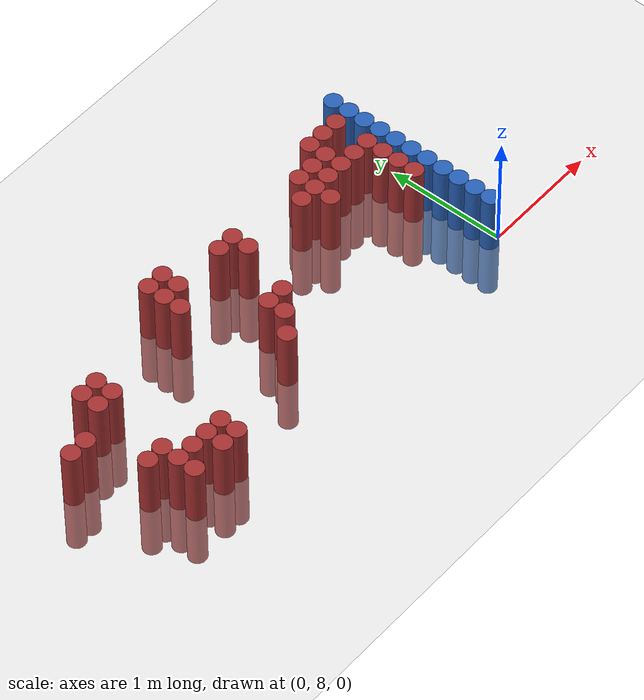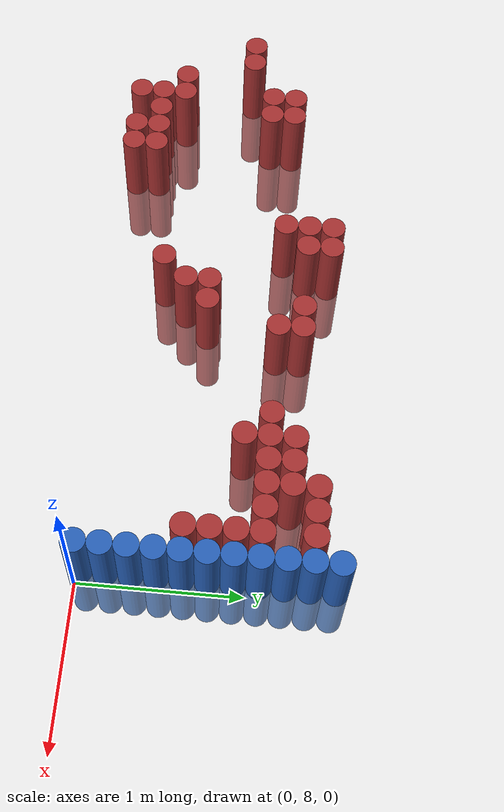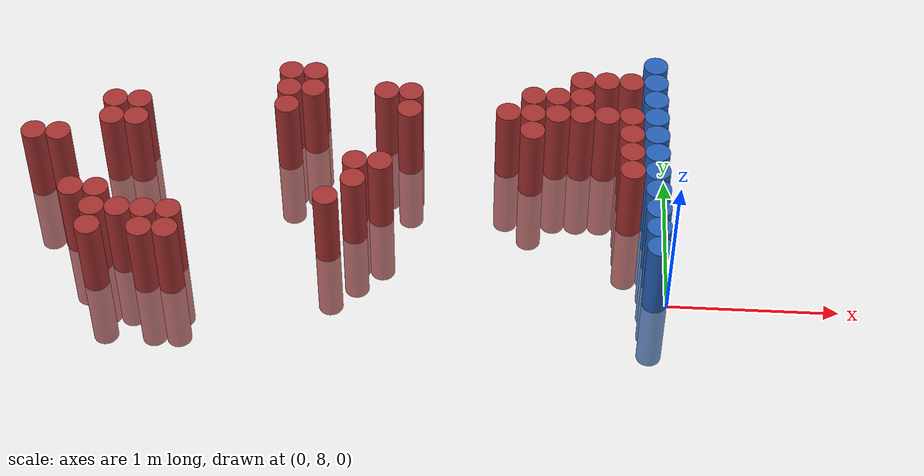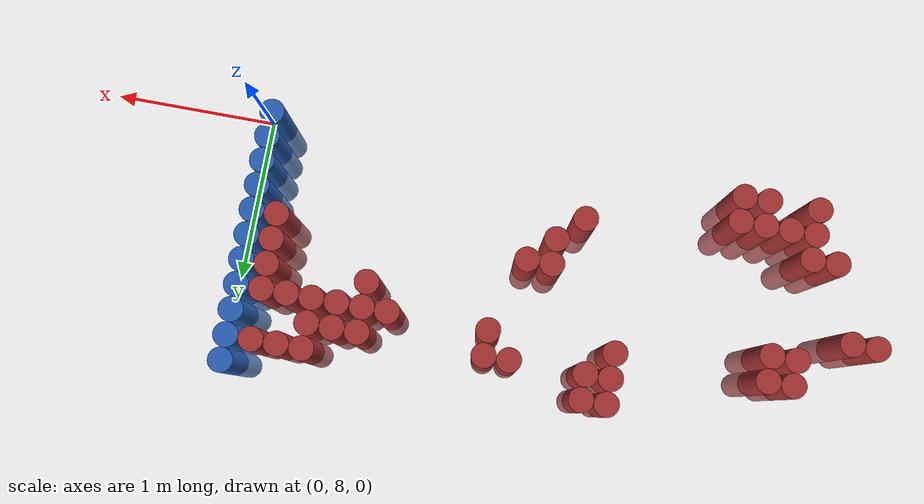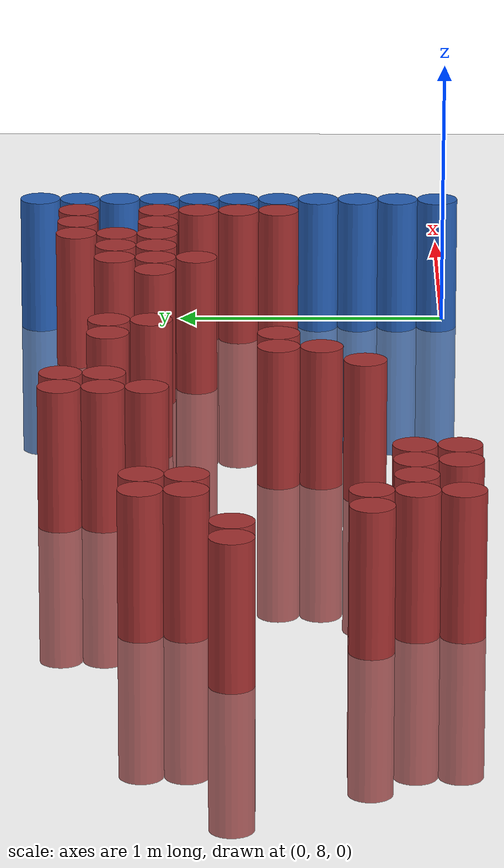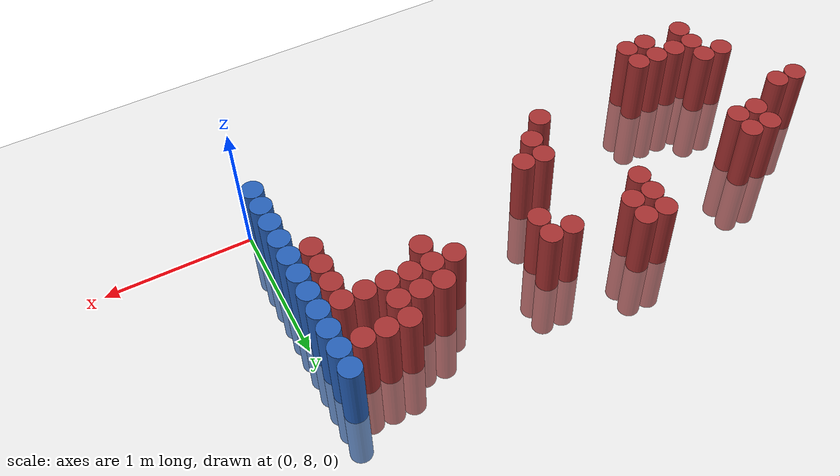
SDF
<sdf version="1.6">
 <world name="default">
  <model name="ground_plane">
   <static>1</static>
   <link name="link">
    <collision name="collision">
     <geometry><plane><normal>0 0 1</normal><size>100 100</size></plane></geometry>
     <surface><friction><ode><mu>100</mu><mu2>50</mu2></ode></friction></surface>
    </collision>
    <visual name="visual">
     <cast_shadows>0</cast_shadows>
     <geometry><plane><normal>0 0 1</normal><size>100 100</size></plane></geometry>
     <material>
      <script><uri>file://media/materials/scripts/gazebo.material</uri><name>Gazebo/Grey</name></script>
     </material>
    </visual>
   </link>
  </model>
  <model name="unit_cylinder_155">
   <static>1</static>
   <pose>-3.825000 8.775000 0.000000 0.000000 0.000000 0.000000</pose>
   <link name="link">
    <inertial>
     <mass>1</mass>
     <inertia><ixx>0.145833</ixx><ixy>0</ixy><ixz>0</ixz><iyy>0.145833</iyy><iyz>0</iyz><izz>0.125</izz></inertia>
    </inertial>
    <collision name="collision">
     <geometry><cylinder><radius>0.075000</radius><length>1</length></cylinder></geometry>
    </collision>
    <visual name="visual">
     <geometry><cylinder><radius>0.075000</radius><length>1</length></cylinder></geometry>
     <material>
      <ambient>0.648000 0.192000 0.192000 1</ambient>
      <diffuse>0.648000 0.192000 0.192000 1</diffuse>
     </material>
     <material>
      <script><name>Gazebo/Grey</name><uri>file://media/materials/scripts/gazebo.material</uri></script>
     </material>
    </visual>
   </link>
  </model>
  <model name="unit_cylinder_157">
   <static>1</static>
   <pose>-3.675000 8.775000 0.000000 0.000000 0.000000 0.000000</pose>
   <link name="link">
    <inertial>
     <mass>1</mass>
     <inertia><ixx>0.145833</ixx><ixy>0</ixy><ixz>0</ixz><iyy>0.145833</iyy><iyz>0</iyz><izz>0.125</izz></inertia>
    </inertial>
    <collision name="collision">
     <geometry><cylinder><radius>0.075000</radius><length>1</length></cylinder></geometry>
    </collision>
    <visual name="visual">
     <geometry><cylinder><radius>0.075000</radius><length>1</length></cylinder></geometry>
     <material>
      <ambient>0.648000 0.192000 0.192000 1</ambient>
      <diffuse>0.648000 0.192000 0.192000 1</diffuse>
     </material>
     <material>
      <script><name>Gazebo/Grey</name><uri>file://media/materials/scripts/gazebo.material</uri></script>
     </material>
    </visual>
   </link>
  </model>
  <model name="unit_cylinder_158">
   <static>1</static>
   <pose>-3.525000 8.325000 0.000000 0.000000 0.000000 0.000000</pose>
   <link name="link">
    <inertial>
     <mass>1</mass>
     <inertia><ixx>0.145833</ixx><ixy>0</ixy><ixz>0</ixz><iyy>0.145833</iyy><iyz>0</iyz><izz>0.125</izz></inertia>
    </inertial>
    <collision name="collision">
     <geometry><cylinder><radius>0.075000</radius><length>1</length></cylinder></geometry>
    </collision>
    <visual name="visual">
     <geometry><cylinder><radius>0.075000</radius><length>1</length></cylinder></geometry>
     <material>
      <ambient>0.648000 0.192000 0.192000 1</ambient>
      <diffuse>0.648000 0.192000 0.192000 1</diffuse>
     </material>
     <material>
      <script><name>Gazebo/Grey</name><uri>file://media/materials/scripts/gazebo.material</uri></script>
     </material>
    </visual>
   </link>
  </model>
  <model name="unit_cylinder_160">
   <static>1</static>
   <pose>-3.375000 8.025000 0.000000 0.000000 0.000000 0.000000</pose>
   <link name="link">
    <inertial>
     <mass>1</mass>
     <inertia><ixx>0.145833</ixx><ixy>0</ixy><ixz>0</ixz><iyy>0.145833</iyy><iyz>0</iyz><izz>0.125</izz></inertia>
    </inertial>
    <collision name="collision">
     <geometry><cylinder><radius>0.075000</radius><length>1</length></cylinder></geometry>
    </collision>
    <visual name="visual">
     <geometry><cylinder><radius>0.075000</radius><length>1</length></cylinder></geometry>
     <material>
      <ambient>0.648000 0.192000 0.192000 1</ambient>
      <diffuse>0.648000 0.192000 0.192000 1</diffuse>
     </material>
     <material>
      <script><name>Gazebo/Grey</name><uri>file://media/materials/scripts/gazebo.material</uri></script>
     </material>
    </visual>
   </link>
  </model>
  <model name="unit_cylinder_161">
   <static>1</static>
   <pose>-3.375000 8.175000 0.000000 0.000000 0.000000 0.000000</pose>
   <link name="link">
    <inertial>
     <mass>1</mass>
     <inertia><ixx>0.145833</ixx><ixy>0</ixy><ixz>0</ixz><iyy>0.145833</iyy><iyz>0</iyz><izz>0.125</izz></inertia>
    </inertial>
    <collision name="collision">
     <geometry><cylinder><radius>0.075000</radius><length>1</length></cylinder></geometry>
    </collision>
    <visual name="visual">
     <geometry><cylinder><radius>0.075000</radius><length>1</length></cylinder></geometry>
     <material>
      <ambient>0.648000 0.192000 0.192000 1</ambient>
      <diffuse>0.648000 0.192000 0.192000 1</diffuse>
     </material>
     <material>
      <script><name>Gazebo/Grey</name><uri>file://media/materials/scripts/gazebo.material</uri></script>
     </material>
    </visual>
   </link>
  </model>
  <model name="unit_cylinder_162">
   <static>1</static>
   <pose>-3.375000 8.325000 0.000000 0.000000 0.000000 0.000000</pose>
   <link name="link">
    <inertial>
     <mass>1</mass>
     <inertia><ixx>0.145833</ixx><ixy>0</ixy><ixz>0</ixz><iyy>0.145833</iyy><iyz>0</iyz><izz>0.125</izz></inertia>
    </inertial>
    <collision name="collision">
     <geometry><cylinder><radius>0.075000</radius><length>1</length></cylinder></geometry>
    </collision>
    <visual name="visual">
     <geometry><cylinder><radius>0.075000</radius><length>1</length></cylinder></geometry>
     <material>
      <ambient>0.648000 0.192000 0.192000 1</ambient>
      <diffuse>0.648000 0.192000 0.192000 1</diffuse>
     </material>
     <material>
      <script><name>Gazebo/Grey</name><uri>file://media/materials/scripts/gazebo.material</uri></script>
     </material>
    </visual>
   </link>
  </model>
  <model name="unit_cylinder_163">
   <static>1</static>
   <pose>-3.375000 8.925000 0.000000 0.000000 0.000000 0.000000</pose>
   <link name="link">
    <inertial>
     <mass>1</mass>
     <inertia><ixx>0.145833</ixx><ixy>0</ixy><ixz>0</ixz><iyy>0.145833</iyy><iyz>0</iyz><izz>0.125</izz></inertia>
    </inertial>
    <collision name="collision">
     <geometry><cylinder><radius>0.075000</radius><length>1</length></cylinder></geometry>
    </collision>
    <visual name="visual">
     <geometry><cylinder><radius>0.075000</radius><length>1</length></cylinder></geometry>
     <material>
      <ambient>0.648000 0.192000 0.192000 1</ambient>
      <diffuse>0.648000 0.192000 0.192000 1</diffuse>
     </material>
     <material>
      <script><name>Gazebo/Grey</name><uri>file://media/materials/scripts/gazebo.material</uri></script>
     </material>
    </visual>
   </link>
  </model>
  <model name="unit_cylinder_164">
   <static>1</static>
   <pose>-3.375000 9.075000 0.000000 0.000000 0.000000 0.000000</pose>
   <link name="link">
    <inertial>
     <mass>1</mass>
     <inertia><ixx>0.145833</ixx><ixy>0</ixy><ixz>0</ixz><iyy>0.145833</iyy><iyz>0</iyz><izz>0.125</izz></inertia>
    </inertial>
    <collision name="collision">
     <geometry><cylinder><radius>0.075000</radius><length>1</length></cylinder></geometry>
    </collision>
    <visual name="visual">
     <geometry><cylinder><radius>0.075000</radius><length>1</length></cylinder></geometry>
     <material>
      <ambient>0.648000 0.192000 0.192000 1</ambient>
      <diffuse>0.648000 0.192000 0.192000 1</diffuse>
     </material>
     <material>
      <script><name>Gazebo/Grey</name><uri>file://media/materials/scripts/gazebo.material</uri></script>
     </material>
    </visual>
   </link>
  </model>
  <model name="unit_cylinder_168">
   <static>1</static>
   <pose>-3.225000 8.175000 0.000000 0.000000 0.000000 0.000000</pose>
   <link name="link">
    <inertial>
     <mass>1</mass>
     <inertia><ixx>0.145833</ixx><ixy>0</ixy><ixz>0</ixz><iyy>0.145833</iyy><iyz>0</iyz><izz>0.125</izz></inertia>
    </inertial>
    <collision name="collision">
     <geometry><cylinder><radius>0.075000</radius><length>1</length></cylinder></geometry>
    </collision>
    <visual name="visual">
     <geometry><cylinder><radius>0.075000</radius><length>1</length></cylinder></geometry>
     <material>
      <ambient>0.648000 0.192000 0.192000 1</ambient>
      <diffuse>0.648000 0.192000 0.192000 1</diffuse>
     </material>
     <material>
      <script><name>Gazebo/Grey</name><uri>file://media/materials/scripts/gazebo.material</uri></script>
     </material>
    </visual>
   </link>
  </model>
  <model name="unit_cylinder_169">
   <static>1</static>
   <pose>-3.225000 8.925000 0.000000 0.000000 0.000000 0.000000</pose>
   <link name="link">
    <inertial>
     <mass>1</mass>
     <inertia><ixx>0.145833</ixx><ixy>0</ixy><ixz>0</ixz><iyy>0.145833</iyy><iyz>0</iyz><izz>0.125</izz></inertia>
    </inertial>
    <collision name="collision">
     <geometry><cylinder><radius>0.075000</radius><length>1</length></cylinder></geometry>
    </collision>
    <visual name="visual">
     <geometry><cylinder><radius>0.075000</radius><length>1</length></cylinder></geometry>
     <material>
      <ambient>0.648000 0.192000 0.192000 1</ambient>
      <diffuse>0.648000 0.192000 0.192000 1</diffuse>
     </material>
     <material>
      <script><name>Gazebo/Grey</name><uri>file://media/materials/scripts/gazebo.material</uri></script>
     </material>
    </visual>
   </link>
  </model>
  <model name="unit_cylinder_170">
   <static>1</static>
   <pose>-3.225000 9.075000 0.000000 0.000000 0.000000 0.000000</pose>
   <link name="link">
    <inertial>
     <mass>1</mass>
     <inertia><ixx>0.145833</ixx><ixy>0</ixy><ixz>0</ixz><iyy>0.145833</iyy><iyz>0</iyz><izz>0.125</izz></inertia>
    </inertial>
    <collision name="collision">
     <geometry><cylinder><radius>0.075000</radius><length>1</length></cylinder></geometry>
    </collision>
    <visual name="visual">
     <geometry><cylinder><radius>0.075000</radius><length>1</length></cylinder></geometry>
     <material>
      <ambient>0.648000 0.192000 0.192000 1</ambient>
      <diffuse>0.648000 0.192000 0.192000 1</diffuse>
     </material>
     <material>
      <script><name>Gazebo/Grey</name><uri>file://media/materials/scripts/gazebo.material</uri></script>
     </material>
    </visual>
   </link>
  </model>
  <model name="unit_cylinder_174">
   <static>1</static>
   <pose>-3.075000 8.025000 0.000000 0.000000 0.000000 0.000000</pose>
   <link name="link">
    <inertial>
     <mass>1</mass>
     <inertia><ixx>0.145833</ixx><ixy>0</ixy><ixz>0</ixz><iyy>0.145833</iyy><iyz>0</iyz><izz>0.125</izz></inertia>
    </inertial>
    <collision name="collision">
     <geometry><cylinder><radius>0.075000</radius><length>1</length></cylinder></geometry>
    </collision>
    <visual name="visual">
     <geometry><cylinder><radius>0.075000</radius><length>1</length></cylinder></geometry>
     <material>
      <ambient>0.648000 0.192000 0.192000 1</ambient>
      <diffuse>0.648000 0.192000 0.192000 1</diffuse>
     </material>
     <material>
      <script><name>Gazebo/Grey</name><uri>file://media/materials/scripts/gazebo.material</uri></script>
     </material>
    </visual>
   </link>
  </model>
  <model name="unit_cylinder_175">
   <static>1</static>
   <pose>-3.075000 8.175000 0.000000 0.000000 0.000000 0.000000</pose>
   <link name="link">
    <inertial>
     <mass>1</mass>
     <inertia><ixx>0.145833</ixx><ixy>0</ixy><ixz>0</ixz><iyy>0.145833</iyy><iyz>0</iyz><izz>0.125</izz></inertia>
    </inertial>
    <collision name="collision">
     <geometry><cylinder><radius>0.075000</radius><length>1</length></cylinder></geometry>
    </collision>
    <visual name="visual">
     <geometry><cylinder><radius>0.075000</radius><length>1</length></cylinder></geometry>
     <material>
      <ambient>0.648000 0.192000 0.192000 1</ambient>
      <diffuse>0.648000 0.192000 0.192000 1</diffuse>
     </material>
     <material>
      <script><name>Gazebo/Grey</name><uri>file://media/materials/scripts/gazebo.material</uri></script>
     </material>
    </visual>
   </link>
  </model>
  <model name="unit_cylinder_178">
   <static>1</static>
   <pose>-2.925000 8.025000 0.000000 0.000000 0.000000 0.000000</pose>
   <link name="link">
    <inertial>
     <mass>1</mass>
     <inertia><ixx>0.145833</ixx><ixy>0</ixy><ixz>0</ixz><iyy>0.145833</iyy><iyz>0</iyz><izz>0.125</izz></inertia>
    </inertial>
    <collision name="collision">
     <geometry><cylinder><radius>0.075000</radius><length>1</length></cylinder></geometry>
    </collision>
    <visual name="visual">
     <geometry><cylinder><radius>0.075000</radius><length>1</length></cylinder></geometry>
     <material>
      <ambient>0.648000 0.192000 0.192000 1</ambient>
      <diffuse>0.648000 0.192000 0.192000 1</diffuse>
     </material>
     <material>
      <script><name>Gazebo/Grey</name><uri>file://media/materials/scripts/gazebo.material</uri></script>
     </material>
    </visual>
   </link>
  </model>
  <model name="unit_cylinder_179">
   <static>1</static>
   <pose>-2.925000 8.175000 0.000000 0.000000 0.000000 0.000000</pose>
   <link name="link">
    <inertial>
     <mass>1</mass>
     <inertia><ixx>0.145833</ixx><ixy>0</ixy><ixz>0</ixz><iyy>0.145833</iyy><iyz>0</iyz><izz>0.125</izz></inertia>
    </inertial>
    <collision name="collision">
     <geometry><cylinder><radius>0.075000</radius><length>1</length></cylinder></geometry>
    </collision>
    <visual name="visual">
     <geometry><cylinder><radius>0.075000</radius><length>1</length></cylinder></geometry>
     <material>
      <ambient>0.648000 0.192000 0.192000 1</ambient>
      <diffuse>0.648000 0.192000 0.192000 1</diffuse>
     </material>
     <material>
      <script><name>Gazebo/Grey</name><uri>file://media/materials/scripts/gazebo.material</uri></script>
     </material>
    </visual>
   </link>
  </model>
  <model name="unit_cylinder_190">
   <static>1</static>
   <pose>-2.325000 9.075000 0.000000 0.000000 0.000000 0.000000</pose>
   <link name="link">
    <inertial>
     <mass>1</mass>
     <inertia><ixx>0.145833</ixx><ixy>0</ixy><ixz>0</ixz><iyy>0.145833</iyy><iyz>0</iyz><izz>0.125</izz></inertia>
    </inertial>
    <collision name="collision">
     <geometry><cylinder><radius>0.075000</radius><length>1</length></cylinder></geometry>
    </collision>
    <visual name="visual">
     <geometry><cylinder><radius>0.075000</radius><length>1</length></cylinder></geometry>
     <material>
      <ambient>0.648000 0.192000 0.192000 1</ambient>
      <diffuse>0.648000 0.192000 0.192000 1</diffuse>
     </material>
     <material>
      <script><name>Gazebo/Grey</name><uri>file://media/materials/scripts/gazebo.material</uri></script>
     </material>
    </visual>
   </link>
  </model>
  <model name="unit_cylinder_191">
   <static>1</static>
   <pose>-2.325000 9.225000 0.000000 0.000000 0.000000 0.000000</pose>
   <link name="link">
    <inertial>
     <mass>1</mass>
     <inertia><ixx>0.145833</ixx><ixy>0</ixy><ixz>0</ixz><iyy>0.145833</iyy><iyz>0</iyz><izz>0.125</izz></inertia>
    </inertial>
    <collision name="collision">
     <geometry><cylinder><radius>0.075000</radius><length>1</length></cylinder></geometry>
    </collision>
    <visual name="visual">
     <geometry><cylinder><radius>0.075000</radius><length>1</length></cylinder></geometry>
     <material>
      <ambient>0.648000 0.192000 0.192000 1</ambient>
      <diffuse>0.648000 0.192000 0.192000 1</diffuse>
     </material>
     <material>
      <script><name>Gazebo/Grey</name><uri>file://media/materials/scripts/gazebo.material</uri></script>
     </material>
    </visual>
   </link>
  </model>
  <model name="unit_cylinder_192">
   <static>1</static>
   <pose>-2.325000 9.375000 0.000000 0.000000 0.000000 0.000000</pose>
   <link name="link">
    <inertial>
     <mass>1</mass>
     <inertia><ixx>0.145833</ixx><ixy>0</ixy><ixz>0</ixz><iyy>0.145833</iyy><iyz>0</iyz><izz>0.125</izz></inertia>
    </inertial>
    <collision name="collision">
     <geometry><cylinder><radius>0.075000</radius><length>1</length></cylinder></geometry>
    </collision>
    <visual name="visual">
     <geometry><cylinder><radius>0.075000</radius><length>1</length></cylinder></geometry>
     <material>
      <ambient>0.648000 0.192000 0.192000 1</ambient>
      <diffuse>0.648000 0.192000 0.192000 1</diffuse>
     </material>
     <material>
      <script><name>Gazebo/Grey</name><uri>file://media/materials/scripts/gazebo.material</uri></script>
     </material>
    </visual>
   </link>
  </model>
  <model name="unit_cylinder_193">
   <static>1</static>
   <pose>-2.175000 9.225000 0.000000 0.000000 0.000000 0.000000</pose>
   <link name="link">
    <inertial>
     <mass>1</mass>
     <inertia><ixx>0.145833</ixx><ixy>0</ixy><ixz>0</ixz><iyy>0.145833</iyy><iyz>0</iyz><izz>0.125</izz></inertia>
    </inertial>
    <collision name="collision">
     <geometry><cylinder><radius>0.075000</radius><length>1</length></cylinder></geometry>
    </collision>
    <visual name="visual">
     <geometry><cylinder><radius>0.075000</radius><length>1</length></cylinder></geometry>
     <material>
      <ambient>0.648000 0.192000 0.192000 1</ambient>
      <diffuse>0.648000 0.192000 0.192000 1</diffuse>
     </material>
     <material>
      <script><name>Gazebo/Grey</name><uri>file://media/materials/scripts/gazebo.material</uri></script>
     </material>
    </visual>
   </link>
  </model>
  <model name="unit_cylinder_194">
   <static>1</static>
   <pose>-2.175000 9.375000 0.000000 0.000000 0.000000 0.000000</pose>
   <link name="link">
    <inertial>
     <mass>1</mass>
     <inertia><ixx>0.145833</ixx><ixy>0</ixy><ixz>0</ixz><iyy>0.145833</iyy><iyz>0</iyz><izz>0.125</izz></inertia>
    </inertial>
    <collision name="collision">
     <geometry><cylinder><radius>0.075000</radius><length>1</length></cylinder></geometry>
    </collision>
    <visual name="visual">
     <geometry><cylinder><radius>0.075000</radius><length>1</length></cylinder></geometry>
     <material>
      <ambient>0.648000 0.192000 0.192000 1</ambient>
      <diffuse>0.648000 0.192000 0.192000 1</diffuse>
     </material>
     <material>
      <script><name>Gazebo/Grey</name><uri>file://media/materials/scripts/gazebo.material</uri></script>
     </material>
    </visual>
   </link>
  </model>
  <model name="unit_cylinder_195">
   <static>1</static>
   <pose>-2.025000 8.325000 0.000000 0.000000 0.000000 0.000000</pose>
   <link name="link">
    <inertial>
     <mass>1</mass>
     <inertia><ixx>0.145833</ixx><ixy>0</ixy><ixz>0</ixz><iyy>0.145833</iyy><iyz>0</iyz><izz>0.125</izz></inertia>
    </inertial>
    <collision name="collision">
     <geometry><cylinder><radius>0.075000</radius><length>1</length></cylinder></geometry>
    </collision>
    <visual name="visual">
     <geometry><cylinder><radius>0.075000</radius><length>1</length></cylinder></geometry>
     <material>
      <ambient>0.648000 0.192000 0.192000 1</ambient>
      <diffuse>0.648000 0.192000 0.192000 1</diffuse>
     </material>
     <material>
      <script><name>Gazebo/Grey</name><uri>file://media/materials/scripts/gazebo.material</uri></script>
     </material>
    </visual>
   </link>
  </model>
  <model name="unit_cylinder_196">
   <static>1</static>
   <pose>-1.875000 8.475000 0.000000 0.000000 0.000000 0.000000</pose>
   <link name="link">
    <inertial>
     <mass>1</mass>
     <inertia><ixx>0.145833</ixx><ixy>0</ixy><ixz>0</ixz><iyy>0.145833</iyy><iyz>0</iyz><izz>0.125</izz></inertia>
    </inertial>
    <collision name="collision">
     <geometry><cylinder><radius>0.075000</radius><length>1</length></cylinder></geometry>
    </collision>
    <visual name="visual">
     <geometry><cylinder><radius>0.075000</radius><length>1</length></cylinder></geometry>
     <material>
      <ambient>0.648000 0.192000 0.192000 1</ambient>
      <diffuse>0.648000 0.192000 0.192000 1</diffuse>
     </material>
     <material>
      <script><name>Gazebo/Grey</name><uri>file://media/materials/scripts/gazebo.material</uri></script>
     </material>
    </visual>
   </link>
  </model>
  <model name="unit_cylinder_197">
   <static>1</static>
   <pose>-1.875000 8.625000 0.000000 0.000000 0.000000 0.000000</pose>
   <link name="link">
    <inertial>
     <mass>1</mass>
     <inertia><ixx>0.145833</ixx><ixy>0</ixy><ixz>0</ixz><iyy>0.145833</iyy><iyz>0</iyz><izz>0.125</izz></inertia>
    </inertial>
    <collision name="collision">
     <geometry><cylinder><radius>0.075000</radius><length>1</length></cylinder></geometry>
    </collision>
    <visual name="visual">
     <geometry><cylinder><radius>0.075000</radius><length>1</length></cylinder></geometry>
     <material>
      <ambient>0.648000 0.192000 0.192000 1</ambient>
      <diffuse>0.648000 0.192000 0.192000 1</diffuse>
     </material>
     <material>
      <script><name>Gazebo/Grey</name><uri>file://media/materials/scripts/gazebo.material</uri></script>
     </material>
    </visual>
   </link>
  </model>
  <model name="unit_cylinder_198">
   <static>1</static>
   <pose>-1.725000 8.625000 0.000000 0.000000 0.000000 0.000000</pose>
   <link name="link">
    <inertial>
     <mass>1</mass>
     <inertia><ixx>0.145833</ixx><ixy>0</ixy><ixz>0</ixz><iyy>0.145833</iyy><iyz>0</iyz><izz>0.125</izz></inertia>
    </inertial>
    <collision name="collision">
     <geometry><cylinder><radius>0.075000</radius><length>1</length></cylinder></geometry>
    </collision>
    <visual name="visual">
     <geometry><cylinder><radius>0.075000</radius><length>1</length></cylinder></geometry>
     <material>
      <ambient>0.648000 0.192000 0.192000 1</ambient>
      <diffuse>0.648000 0.192000 0.192000 1</diffuse>
     </material>
     <material>
      <script><name>Gazebo/Grey</name><uri>file://media/materials/scripts/gazebo.material</uri></script>
     </material>
    </visual>
   </link>
  </model>
  <model name="unit_cylinder_199">
   <static>1</static>
   <pose>-1.725000 9.225000 0.000000 0.000000 0.000000 0.000000</pose>
   <link name="link">
    <inertial>
     <mass>1</mass>
     <inertia><ixx>0.145833</ixx><ixy>0</ixy><ixz>0</ixz><iyy>0.145833</iyy><iyz>0</iyz><izz>0.125</izz></inertia>
    </inertial>
    <collision name="collision">
     <geometry><cylinder><radius>0.075000</radius><length>1</length></cylinder></geometry>
    </collision>
    <visual name="visual">
     <geometry><cylinder><radius>0.075000</radius><length>1</length></cylinder></geometry>
     <material>
      <ambient>0.648000 0.192000 0.192000 1</ambient>
      <diffuse>0.648000 0.192000 0.192000 1</diffuse>
     </material>
     <material>
      <script><name>Gazebo/Grey</name><uri>file://media/materials/scripts/gazebo.material</uri></script>
     </material>
    </visual>
   </link>
  </model>
  <model name="unit_cylinder_200">
   <static>1</static>
   <pose>-1.575000 9.075000 0.000000 0.000000 0.000000 0.000000</pose>
   <link name="link">
    <inertial>
     <mass>1</mass>
     <inertia><ixx>0.145833</ixx><ixy>0</ixy><ixz>0</ixz><iyy>0.145833</iyy><iyz>0</iyz><izz>0.125</izz></inertia>
    </inertial>
    <collision name="collision">
     <geometry><cylinder><radius>0.075000</radius><length>1</length></cylinder></geometry>
    </collision>
    <visual name="visual">
     <geometry><cylinder><radius>0.075000</radius><length>1</length></cylinder></geometry>
     <material>
      <ambient>0.648000 0.192000 0.192000 1</ambient>
      <diffuse>0.648000 0.192000 0.192000 1</diffuse>
     </material>
     <material>
      <script><name>Gazebo/Grey</name><uri>file://media/materials/scripts/gazebo.material</uri></script>
     </material>
    </visual>
   </link>
  </model>
  <model name="unit_cylinder_201">
   <static>1</static>
   <pose>-1.575000 9.225000 0.000000 0.000000 0.000000 0.000000</pose>
   <link name="link">
    <inertial>
     <mass>1</mass>
     <inertia><ixx>0.145833</ixx><ixy>0</ixy><ixz>0</ixz><iyy>0.145833</iyy><iyz>0</iyz><izz>0.125</izz></inertia>
    </inertial>
    <collision name="collision">
     <geometry><cylinder><radius>0.075000</radius><length>1</length></cylinder></geometry>
    </collision>
    <visual name="visual">
     <geometry><cylinder><radius>0.075000</radius><length>1</length></cylinder></geometry>
     <material>
      <ambient>0.648000 0.192000 0.192000 1</ambient>
      <diffuse>0.648000 0.192000 0.192000 1</diffuse>
     </material>
     <material>
      <script><name>Gazebo/Grey</name><uri>file://media/materials/scripts/gazebo.material</uri></script>
     </material>
    </visual>
   </link>
  </model>
  <model name="unit_cylinder_213">
   <static>1</static>
   <pose>-0.975000 9.075000 0.000000 0.000000 0.000000 0.000000</pose>
   <link name="link">
    <inertial>
     <mass>1</mass>
     <inertia><ixx>0.145833</ixx><ixy>0</ixy><ixz>0</ixz><iyy>0.145833</iyy><iyz>0</iyz><izz>0.125</izz></inertia>
    </inertial>
    <collision name="collision">
     <geometry><cylinder><radius>0.075000</radius><length>1</length></cylinder></geometry>
    </collision>
    <visual name="visual">
     <geometry><cylinder><radius>0.075000</radius><length>1</length></cylinder></geometry>
     <material>
      <ambient>0.648000 0.192000 0.192000 1</ambient>
      <diffuse>0.648000 0.192000 0.192000 1</diffuse>
     </material>
     <material>
      <script><name>Gazebo/Grey</name><uri>file://media/materials/scripts/gazebo.material</uri></script>
     </material>
    </visual>
   </link>
  </model>
  <model name="unit_cylinder_216">
   <static>1</static>
   <pose>-0.825000 8.925000 0.000000 0.000000 0.000000 0.000000</pose>
   <link name="link">
    <inertial>
     <mass>1</mass>
     <inertia><ixx>0.145833</ixx><ixy>0</ixy><ixz>0</ixz><iyy>0.145833</iyy><iyz>0</iyz><izz>0.125</izz></inertia>
    </inertial>
    <collision name="collision">
     <geometry><cylinder><radius>0.075000</radius><length>1</length></cylinder></geometry>
    </collision>
    <visual name="visual">
     <geometry><cylinder><radius>0.075000</radius><length>1</length></cylinder></geometry>
     <material>
      <ambient>0.648000 0.192000 0.192000 1</ambient>
      <diffuse>0.648000 0.192000 0.192000 1</diffuse>
     </material>
     <material>
      <script><name>Gazebo/Grey</name><uri>file://media/materials/scripts/gazebo.material</uri></script>
     </material>
    </visual>
   </link>
  </model>
  <model name="unit_cylinder_217">
   <static>1</static>
   <pose>-0.825000 9.075000 0.000000 0.000000 0.000000 0.000000</pose>
   <link name="link">
    <inertial>
     <mass>1</mass>
     <inertia><ixx>0.145833</ixx><ixy>0</ixy><ixz>0</ixz><iyy>0.145833</iyy><iyz>0</iyz><izz>0.125</izz></inertia>
    </inertial>
    <collision name="collision">
     <geometry><cylinder><radius>0.075000</radius><length>1</length></cylinder></geometry>
    </collision>
    <visual name="visual">
     <geometry><cylinder><radius>0.075000</radius><length>1</length></cylinder></geometry>
     <material>
      <ambient>0.648000 0.192000 0.192000 1</ambient>
      <diffuse>0.648000 0.192000 0.192000 1</diffuse>
     </material>
     <material>
      <script><name>Gazebo/Grey</name><uri>file://media/materials/scripts/gazebo.material</uri></script>
     </material>
    </visual>
   </link>
  </model>
  <model name="unit_cylinder_218">
   <static>1</static>
   <pose>-0.825000 9.225000 0.000000 0.000000 0.000000 0.000000</pose>
   <link name="link">
    <inertial>
     <mass>1</mass>
     <inertia><ixx>0.145833</ixx><ixy>0</ixy><ixz>0</ixz><iyy>0.145833</iyy><iyz>0</iyz><izz>0.125</izz></inertia>
    </inertial>
    <collision name="collision">
     <geometry><cylinder><radius>0.075000</radius><length>1</length></cylinder></geometry>
    </collision>
    <visual name="visual">
     <geometry><cylinder><radius>0.075000</radius><length>1</length></cylinder></geometry>
     <material>
      <ambient>0.648000 0.192000 0.192000 1</ambient>
      <diffuse>0.648000 0.192000 0.192000 1</diffuse>
     </material>
     <material>
      <script><name>Gazebo/Grey</name><uri>file://media/materials/scripts/gazebo.material</uri></script>
     </material>
    </visual>
   </link>
  </model>
  <model name="unit_cylinder_219">
   <static>1</static>
   <pose>-0.675000 9.075000 0.000000 0.000000 0.000000 0.000000</pose>
   <link name="link">
    <inertial>
     <mass>1</mass>
     <inertia><ixx>0.145833</ixx><ixy>0</ixy><ixz>0</ixz><iyy>0.145833</iyy><iyz>0</iyz><izz>0.125</izz></inertia>
    </inertial>
    <collision name="collision">
     <geometry><cylinder><radius>0.075000</radius><length>1</length></cylinder></geometry>
    </collision>
    <visual name="visual">
     <geometry><cylinder><radius>0.075000</radius><length>1</length></cylinder></geometry>
     <material>
      <ambient>0.648000 0.192000 0.192000 1</ambient>
      <diffuse>0.648000 0.192000 0.192000 1</diffuse>
     </material>
     <material>
      <script><name>Gazebo/Grey</name><uri>file://media/materials/scripts/gazebo.material</uri></script>
     </material>
    </visual>
   </link>
  </model>
  <model name="unit_cylinder_220">
   <static>1</static>
   <pose>-0.675000 9.225000 0.000000 0.000000 0.000000 0.000000</pose>
   <link name="link">
    <inertial>
     <mass>1</mass>
     <inertia><ixx>0.145833</ixx><ixy>0</ixy><ixz>0</ixz><iyy>0.145833</iyy><iyz>0</iyz><izz>0.125</izz></inertia>
    </inertial>
    <collision name="collision">
     <geometry><cylinder><radius>0.075000</radius><length>1</length></cylinder></geometry>
    </collision>
    <visual name="visual">
     <geometry><cylinder><radius>0.075000</radius><length>1</length></cylinder></geometry>
     <material>
      <ambient>0.648000 0.192000 0.192000 1</ambient>
      <diffuse>0.648000 0.192000 0.192000 1</diffuse>
     </material>
     <material>
      <script><name>Gazebo/Grey</name><uri>file://media/materials/scripts/gazebo.material</uri></script>
     </material>
    </visual>
   </link>
  </model>
  <model name="unit_cylinder_221">
   <static>1</static>
   <pose>-0.525000 9.075000 0.000000 0.000000 0.000000 0.000000</pose>
   <link name="link">
    <inertial>
     <mass>1</mass>
     <inertia><ixx>0.145833</ixx><ixy>0</ixy><ixz>0</ixz><iyy>0.145833</iyy><iyz>0</iyz><izz>0.125</izz></inertia>
    </inertial>
    <collision name="collision">
     <geometry><cylinder><radius>0.075000</radius><length>1</length></cylinder></geometry>
    </collision>
    <visual name="visual">
     <geometry><cylinder><radius>0.075000</radius><length>1</length></cylinder></geometry>
     <material>
      <ambient>0.648000 0.192000 0.192000 1</ambient>
      <diffuse>0.648000 0.192000 0.192000 1</diffuse>
     </material>
     <material>
      <script><name>Gazebo/Grey</name><uri>file://media/materials/scripts/gazebo.material</uri></script>
     </material>
    </visual>
   </link>
  </model>
  <model name="unit_cylinder_222">
   <static>1</static>
   <pose>-0.525000 9.225000 0.000000 0.000000 0.000000 0.000000</pose>
   <link name="link">
    <inertial>
     <mass>1</mass>
     <inertia><ixx>0.145833</ixx><ixy>0</ixy><ixz>0</ixz><iyy>0.145833</iyy><iyz>0</iyz><izz>0.125</izz></inertia>
    </inertial>
    <collision name="collision">
     <geometry><cylinder><radius>0.075000</radius><length>1</length></cylinder></geometry>
    </collision>
    <visual name="visual">
     <geometry><cylinder><radius>0.075000</radius><length>1</length></cylinder></geometry>
     <material>
      <ambient>0.648000 0.192000 0.192000 1</ambient>
      <diffuse>0.648000 0.192000 0.192000 1</diffuse>
     </material>
     <material>
      <script><name>Gazebo/Grey</name><uri>file://media/materials/scripts/gazebo.material</uri></script>
     </material>
    </visual>
   </link>
  </model>
  <model name="unit_cylinder_223">
   <static>1</static>
   <pose>-0.525000 9.375000 0.000000 0.000000 0.000000 0.000000</pose>
   <link name="link">
    <inertial>
     <mass>1</mass>
     <inertia><ixx>0.145833</ixx><ixy>0</ixy><ixz>0</ixz><iyy>0.145833</iyy><iyz>0</iyz><izz>0.125</izz></inertia>
    </inertial>
    <collision name="collision">
     <geometry><cylinder><radius>0.075000</radius><length>1</length></cylinder></geometry>
    </collision>
    <visual name="visual">
     <geometry><cylinder><radius>0.075000</radius><length>1</length></cylinder></geometry>
     <material>
      <ambient>0.648000 0.192000 0.192000 1</ambient>
      <diffuse>0.648000 0.192000 0.192000 1</diffuse>
     </material>
     <material>
      <script><name>Gazebo/Grey</name><uri>file://media/materials/scripts/gazebo.material</uri></script>
     </material>
    </visual>
   </link>
  </model>
  <model name="unit_cylinder_224">
   <static>1</static>
   <pose>-0.375000 9.075000 0.000000 0.000000 0.000000 0.000000</pose>
   <link name="link">
    <inertial>
     <mass>1</mass>
     <inertia><ixx>0.145833</ixx><ixy>0</ixy><ixz>0</ixz><iyy>0.145833</iyy><iyz>0</iyz><izz>0.125</izz></inertia>
    </inertial>
    <collision name="collision">
     <geometry><cylinder><radius>0.075000</radius><length>1</length></cylinder></geometry>
    </collision>
    <visual name="visual">
     <geometry><cylinder><radius>0.075000</radius><length>1</length></cylinder></geometry>
     <material>
      <ambient>0.648000 0.192000 0.192000 1</ambient>
      <diffuse>0.648000 0.192000 0.192000 1</diffuse>
     </material>
     <material>
      <script><name>Gazebo/Grey</name><uri>file://media/materials/scripts/gazebo.material</uri></script>
     </material>
    </visual>
   </link>
  </model>
  <model name="unit_cylinder_225">
   <static>1</static>
   <pose>-0.375000 9.375000 0.000000 0.000000 0.000000 0.000000</pose>
   <link name="link">
    <inertial>
     <mass>1</mass>
     <inertia><ixx>0.145833</ixx><ixy>0</ixy><ixz>0</ixz><iyy>0.145833</iyy><iyz>0</iyz><izz>0.125</izz></inertia>
    </inertial>
    <collision name="collision">
     <geometry><cylinder><radius>0.075000</radius><length>1</length></cylinder></geometry>
    </collision>
    <visual name="visual">
     <geometry><cylinder><radius>0.075000</radius><length>1</length></cylinder></geometry>
     <material>
      <ambient>0.648000 0.192000 0.192000 1</ambient>
      <diffuse>0.648000 0.192000 0.192000 1</diffuse>
     </material>
     <material>
      <script><name>Gazebo/Grey</name><uri>file://media/materials/scripts/gazebo.material</uri></script>
     </material>
    </visual>
   </link>
  </model>
  <model name="unit_cylinder_232">
   <static>1</static>
   <pose>-0.225000 8.625000 0.000000 0.000000 0.000000 0.000000</pose>
   <link name="link">
    <inertial>
     <mass>1</mass>
     <inertia><ixx>0.145833</ixx><ixy>0</ixy><ixz>0</ixz><iyy>0.145833</iyy><iyz>0</iyz><izz>0.125</izz></inertia>
    </inertial>
    <collision name="collision">
     <geometry><cylinder><radius>0.075000</radius><length>1</length></cylinder></geometry>
    </collision>
    <visual name="visual">
     <geometry><cylinder><radius>0.075000</radius><length>1</length></cylinder></geometry>
     <material>
      <ambient>0.648000 0.192000 0.192000 1</ambient>
      <diffuse>0.648000 0.192000 0.192000 1</diffuse>
     </material>
     <material>
      <script><name>Gazebo/Grey</name><uri>file://media/materials/scripts/gazebo.material</uri></script>
     </material>
    </visual>
   </link>
  </model>
  <model name="unit_cylinder_233">
   <static>1</static>
   <pose>-0.225000 8.775000 0.000000 0.000000 0.000000 0.000000</pose>
   <link name="link">
    <inertial>
     <mass>1</mass>
     <inertia><ixx>0.145833</ixx><ixy>0</ixy><ixz>0</ixz><iyy>0.145833</iyy><iyz>0</iyz><izz>0.125</izz></inertia>
    </inertial>
    <collision name="collision">
     <geometry><cylinder><radius>0.075000</radius><length>1</length></cylinder></geometry>
    </collision>
    <visual name="visual">
     <geometry><cylinder><radius>0.075000</radius><length>1</length></cylinder></geometry>
     <material>
      <ambient>0.648000 0.192000 0.192000 1</ambient>
      <diffuse>0.648000 0.192000 0.192000 1</diffuse>
     </material>
     <material>
      <script><name>Gazebo/Grey</name><uri>file://media/materials/scripts/gazebo.material</uri></script>
     </material>
    </visual>
   </link>
  </model>
  <model name="unit_cylinder_234">
   <static>1</static>
   <pose>-0.225000 8.925000 0.000000 0.000000 0.000000 0.000000</pose>
   <link name="link">
    <inertial>
     <mass>1</mass>
     <inertia><ixx>0.145833</ixx><ixy>0</ixy><ixz>0</ixz><iyy>0.145833</iyy><iyz>0</iyz><izz>0.125</izz></inertia>
    </inertial>
    <collision name="collision">
     <geometry><cylinder><radius>0.075000</radius><length>1</length></cylinder></geometry>
    </collision>
    <visual name="visual">
     <geometry><cylinder><radius>0.075000</radius><length>1</length></cylinder></geometry>
     <material>
      <ambient>0.648000 0.192000 0.192000 1</ambient>
      <diffuse>0.648000 0.192000 0.192000 1</diffuse>
     </material>
     <material>
      <script><name>Gazebo/Grey</name><uri>file://media/materials/scripts/gazebo.material</uri></script>
     </material>
    </visual>
   </link>
  </model>
  <model name="unit_cylinder_235">
   <static>1</static>
   <pose>-0.225000 9.075000 0.000000 0.000000 0.000000 0.000000</pose>
   <link name="link">
    <inertial>
     <mass>1</mass>
     <inertia><ixx>0.145833</ixx><ixy>0</ixy><ixz>0</ixz><iyy>0.145833</iyy><iyz>0</iyz><izz>0.125</izz></inertia>
    </inertial>
    <collision name="collision">
     <geometry><cylinder><radius>0.075000</radius><length>1</length></cylinder></geometry>
    </collision>
    <visual name="visual">
     <geometry><cylinder><radius>0.075000</radius><length>1</length></cylinder></geometry>
     <material>
      <ambient>0.648000 0.192000 0.192000 1</ambient>
      <diffuse>0.648000 0.192000 0.192000 1</diffuse>
     </material>
     <material>
      <script><name>Gazebo/Grey</name><uri>file://media/materials/scripts/gazebo.material</uri></script>
     </material>
    </visual>
   </link>
  </model>
  <model name="unit_cylinder_236">
   <static>1</static>
   <pose>-0.225000 9.375000 0.000000 0.000000 0.000000 0.000000</pose>
   <link name="link">
    <inertial>
     <mass>1</mass>
     <inertia><ixx>0.145833</ixx><ixy>0</ixy><ixz>0</ixz><iyy>0.145833</iyy><iyz>0</iyz><izz>0.125</izz></inertia>
    </inertial>
    <collision name="collision">
     <geometry><cylinder><radius>0.075000</radius><length>1</length></cylinder></geometry>
    </collision>
    <visual name="visual">
     <geometry><cylinder><radius>0.075000</radius><length>1</length></cylinder></geometry>
     <material>
      <ambient>0.648000 0.192000 0.192000 1</ambient>
      <diffuse>0.648000 0.192000 0.192000 1</diffuse>
     </material>
     <material>
      <script><name>Gazebo/Grey</name><uri>file://media/materials/scripts/gazebo.material</uri></script>
     </material>
    </visual>
   </link>
  </model>
  <model name="unit_cylinder_256">
   <static>1</static>
   <pose>-0.075000 8.025000 0.000000 0.000000 0.000000 0.000000</pose>
   <link name="link">
    <inertial>
     <mass>1</mass>
     <inertia><ixx>0.145833</ixx><ixy>0</ixy><ixz>0</ixz><iyy>0.145833</iyy><iyz>0</iyz><izz>0.125</izz></inertia>
    </inertial>
    <collision name="collision">
     <geometry><cylinder><radius>0.075000</radius><length>1</length></cylinder></geometry>
    </collision>
    <visual name="visual">
     <geometry><cylinder><radius>0.075000</radius><length>1</length></cylinder></geometry>
     <material>
      <ambient>0.152000 0.379000 0.720000 1</ambient>
      <diffuse>0.152000 0.379000 0.720000 1</diffuse>
     </material>
     <material>
      <script><name>Gazebo/Grey</name><uri>file://media/materials/scripts/gazebo.material</uri></script>
     </material>
    </visual>
   </link>
  </model>
  <model name="unit_cylinder_257">
   <static>1</static>
   <pose>-0.075000 8.175000 0.000000 0.000000 0.000000 0.000000</pose>
   <link name="link">
    <inertial>
     <mass>1</mass>
     <inertia><ixx>0.145833</ixx><ixy>0</ixy><ixz>0</ixz><iyy>0.145833</iyy><iyz>0</iyz><izz>0.125</izz></inertia>
    </inertial>
    <collision name="collision">
     <geometry><cylinder><radius>0.075000</radius><length>1</length></cylinder></geometry>
    </collision>
    <visual name="visual">
     <geometry><cylinder><radius>0.075000</radius><length>1</length></cylinder></geometry>
     <material>
      <ambient>0.152000 0.379000 0.720000 1</ambient>
      <diffuse>0.152000 0.379000 0.720000 1</diffuse>
     </material>
     <material>
      <script><name>Gazebo/Grey</name><uri>file://media/materials/scripts/gazebo.material</uri></script>
     </material>
    </visual>
   </link>
  </model>
  <model name="unit_cylinder_258">
   <static>1</static>
   <pose>-0.075000 8.325000 0.000000 0.000000 0.000000 0.000000</pose>
   <link name="link">
    <inertial>
     <mass>1</mass>
     <inertia><ixx>0.145833</ixx><ixy>0</ixy><ixz>0</ixz><iyy>0.145833</iyy><iyz>0</iyz><izz>0.125</izz></inertia>
    </inertial>
    <collision name="collision">
     <geometry><cylinder><radius>0.075000</radius><length>1</length></cylinder></geometry>
    </collision>
    <visual name="visual">
     <geometry><cylinder><radius>0.075000</radius><length>1</length></cylinder></geometry>
     <material>
      <ambient>0.152000 0.379000 0.720000 1</ambient>
      <diffuse>0.152000 0.379000 0.720000 1</diffuse>
     </material>
     <material>
      <script><name>Gazebo/Grey</name><uri>file://media/materials/scripts/gazebo.material</uri></script>
     </material>
    </visual>
   </link>
  </model>
  <model name="unit_cylinder_259">
   <static>1</static>
   <pose>-0.075000 8.475000 0.000000 0.000000 0.000000 0.000000</pose>
   <link name="link">
    <inertial>
     <mass>1</mass>
     <inertia><ixx>0.145833</ixx><ixy>0</ixy><ixz>0</ixz><iyy>0.145833</iyy><iyz>0</iyz><izz>0.125</izz></inertia>
    </inertial>
    <collision name="collision">
     <geometry><cylinder><radius>0.075000</radius><length>1</length></cylinder></geometry>
    </collision>
    <visual name="visual">
     <geometry><cylinder><radius>0.075000</radius><length>1</length></cylinder></geometry>
     <material>
      <ambient>0.152000 0.379000 0.720000 1</ambient>
      <diffuse>0.152000 0.379000 0.720000 1</diffuse>
     </material>
     <material>
      <script><name>Gazebo/Grey</name><uri>file://media/materials/scripts/gazebo.material</uri></script>
     </material>
    </visual>
   </link>
  </model>
  <model name="unit_cylinder_260">
   <static>1</static>
   <pose>-0.075000 8.625000 0.000000 0.000000 0.000000 0.000000</pose>
   <link name="link">
    <inertial>
     <mass>1</mass>
     <inertia><ixx>0.145833</ixx><ixy>0</ixy><ixz>0</ixz><iyy>0.145833</iyy><iyz>0</iyz><izz>0.125</izz></inertia>
    </inertial>
    <collision name="collision">
     <geometry><cylinder><radius>0.075000</radius><length>1</length></cylinder></geometry>
    </collision>
    <visual name="visual">
     <geometry><cylinder><radius>0.075000</radius><length>1</length></cylinder></geometry>
     <material>
      <ambient>0.152000 0.379000 0.720000 1</ambient>
      <diffuse>0.152000 0.379000 0.720000 1</diffuse>
     </material>
     <material>
      <script><name>Gazebo/Grey</name><uri>file://media/materials/scripts/gazebo.material</uri></script>
     </material>
    </visual>
   </link>
  </model>
  <model name="unit_cylinder_261">
   <static>1</static>
   <pose>-0.075000 8.775000 0.000000 0.000000 0.000000 0.000000</pose>
   <link name="link">
    <inertial>
     <mass>1</mass>
     <inertia><ixx>0.145833</ixx><ixy>0</ixy><ixz>0</ixz><iyy>0.145833</iyy><iyz>0</iyz><izz>0.125</izz></inertia>
    </inertial>
    <collision name="collision">
     <geometry><cylinder><radius>0.075000</radius><length>1</length></cylinder></geometry>
    </collision>
    <visual name="visual">
     <geometry><cylinder><radius>0.075000</radius><length>1</length></cylinder></geometry>
     <material>
      <ambient>0.152000 0.379000 0.720000 1</ambient>
      <diffuse>0.152000 0.379000 0.720000 1</diffuse>
     </material>
     <material>
      <script><name>Gazebo/Grey</name><uri>file://media/materials/scripts/gazebo.material</uri></script>
     </material>
    </visual>
   </link>
  </model>
  <model name="unit_cylinder_262">
   <static>1</static>
   <pose>-0.075000 8.925000 0.000000 0.000000 0.000000 0.000000</pose>
   <link name="link">
    <inertial>
     <mass>1</mass>
     <inertia><ixx>0.145833</ixx><ixy>0</ixy><ixz>0</ixz><iyy>0.145833</iyy><iyz>0</iyz><izz>0.125</izz></inertia>
    </inertial>
    <collision name="collision">
     <geometry><cylinder><radius>0.075000</radius><length>1</length></cylinder></geometry>
    </collision>
    <visual name="visual">
     <geometry><cylinder><radius>0.075000</radius><length>1</length></cylinder></geometry>
     <material>
      <ambient>0.152000 0.379000 0.720000 1</ambient>
      <diffuse>0.152000 0.379000 0.720000 1</diffuse>
     </material>
     <material>
      <script><name>Gazebo/Grey</name><uri>file://media/materials/scripts/gazebo.material</uri></script>
     </material>
    </visual>
   </link>
  </model>
  <model name="unit_cylinder_263">
   <static>1</static>
   <pose>-0.075000 9.075000 0.000000 0.000000 0.000000 0.000000</pose>
   <link name="link">
    <inertial>
     <mass>1</mass>
     <inertia><ixx>0.145833</ixx><ixy>0</ixy><ixz>0</ixz><iyy>0.145833</iyy><iyz>0</iyz><izz>0.125</izz></inertia>
    </inertial>
    <collision name="collision">
     <geometry><cylinder><radius>0.075000</radius><length>1</length></cylinder></geometry>
    </collision>
    <visual name="visual">
     <geometry><cylinder><radius>0.075000</radius><length>1</length></cylinder></geometry>
     <material>
      <ambient>0.152000 0.379000 0.720000 1</ambient>
      <diffuse>0.152000 0.379000 0.720000 1</diffuse>
     </material>
     <material>
      <script><name>Gazebo/Grey</name><uri>file://media/materials/scripts/gazebo.material</uri></script>
     </material>
    </visual>
   </link>
  </model>
  <model name="unit_cylinder_264">
   <static>1</static>
   <pose>-0.075000 9.225000 0.000000 0.000000 0.000000 0.000000</pose>
   <link name="link">
    <inertial>
     <mass>1</mass>
     <inertia><ixx>0.145833</ixx><ixy>0</ixy><ixz>0</ixz><iyy>0.145833</iyy><iyz>0</iyz><izz>0.125</izz></inertia>
    </inertial>
    <collision name="collision">
     <geometry><cylinder><radius>0.075000</radius><length>1</length></cylinder></geometry>
    </collision>
    <visual name="visual">
     <geometry><cylinder><radius>0.075000</radius><length>1</length></cylinder></geometry>
     <material>
      <ambient>0.152000 0.379000 0.720000 1</ambient>
      <diffuse>0.152000 0.379000 0.720000 1</diffuse>
     </material>
     <material>
      <script><name>Gazebo/Grey</name><uri>file://media/materials/scripts/gazebo.material</uri></script>
     </material>
    </visual>
   </link>
  </model>
  <model name="unit_cylinder_265">
   <static>1</static>
   <pose>-0.075000 9.375000 0.000000 0.000000 0.000000 0.000000</pose>
   <link name="link">
    <inertial>
     <mass>1</mass>
     <inertia><ixx>0.145833</ixx><ixy>0</ixy><ixz>0</ixz><iyy>0.145833</iyy><iyz>0</iyz><izz>0.125</izz></inertia>
    </inertial>
    <collision name="collision">
     <geometry><cylinder><radius>0.075000</radius><length>1</length></cylinder></geometry>
    </collision>
    <visual name="visual">
     <geometry><cylinder><radius>0.075000</radius><length>1</length></cylinder></geometry>
     <material>
      <ambient>0.152000 0.379000 0.720000 1</ambient>
      <diffuse>0.152000 0.379000 0.720000 1</diffuse>
     </material>
     <material>
      <script><name>Gazebo/Grey</name><uri>file://media/materials/scripts/gazebo.material</uri></script>
     </material>
    </visual>
   </link>
  </model>
  <model name="unit_cylinder_266">
   <static>1</static>
   <pose>-0.075000 9.525000 0.000000 0.000000 0.000000 0.000000</pose>
   <link name="link">
    <inertial>
     <mass>1</mass>
     <inertia><ixx>0.145833</ixx><ixy>0</ixy><ixz>0</ixz><iyy>0.145833</iyy><iyz>0</iyz><izz>0.125</izz></inertia>
    </inertial>
    <collision name="collision">
     <geometry><cylinder><radius>0.075000</radius><length>1</length></cylinder></geometry>
    </collision>
    <visual name="visual">
     <geometry><cylinder><radius>0.075000</radius><length>1</length></cylinder></geometry>
     <material>
      <ambient>0.152000 0.379000 0.720000 1</ambient>
      <diffuse>0.152000 0.379000 0.720000 1</diffuse>
     </material>
     <material>
      <script><name>Gazebo/Grey</name><uri>file://media/materials/scripts/gazebo.material</uri></script>
     </material>
    </visual>
   </link>
  </model>
 </world>
</sdf>
